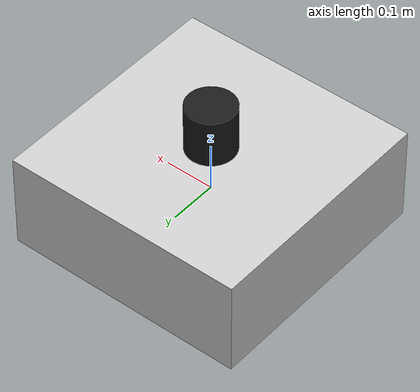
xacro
<?xml version="1.0"?>
<robot xmlns:xacro="http://www.ros.org/wiki/xacro" name="velodyne_on_box">

  <!-- Box Link -->
  <link name="box_link">
    <visual>
      <geometry>
        <box size="0.5 0.5 0.2"/>
      </geometry>
      <material>
        <color rgba="0.8 0.8 0.8 1.0"/>
      </material>
    </visual>
    <collision>
      <geometry>
        <box size="0.5 0.5 0.2"/>
      </geometry>
    </collision>
    <inertial>
      <mass value="1.0"/>
      <inertia ixx="0.01" ixy="0.0" ixz="0.0" iyy="0.01" iyz="0.0" izz="0.01"/>
    </inertial>
  </link>

  <!-- Laser Link -->
  <link name="laser_link">
    <visual>
      <geometry>
        <cylinder length="0.1" radius="0.05"/>
      </geometry>
      <material>
        <color rgba="0.1 0.1 0.1 1.0"/>
      </material>
    </visual>
    <collision>
      <geometry>
        <cylinder length="0.1" radius="0.05"/>
      </geometry>
    </collision>
    <inertial>
      <mass value="0.5"/>
      <inertia ixx="0.002" ixy="0.0" ixz="0.0" iyy="0.002" iyz="0.0" izz="0.002"/>
    </inertial>
  </link>

  <!-- Joint between Box and Laser -->
  <joint name="box_to_laser" type="fixed">
    <parent link="box_link"/>
    <child link="laser_link"/>
    <origin xyz="0 0 0.15" rpy="0 0 0"/>
  </joint>

  <!-- Gazebo Plugin for Velodyne -->
  <gazebo reference="laser_link">
    <sensor type="gpu_ray" name="velodyne-VLP16">
      <pose>0 0 0.1 0 0 0</pose>
      <visualize>true</visualize>
      <update_rate>10</update_rate>
      <ray>
        <scan>
          <horizontal>
            <samples>440</samples>
            <resolution>1</resolution>
            <min_angle>-3.14159265</min_angle>
            <max_angle>3.14159265</max_angle>
          </horizontal>
          <vertical>
            <samples>16</samples>
            <resolution>1</resolution>
            <min_angle>-0.261799388</min_angle>
            <max_angle>0.261799388</max_angle>
          </vertical>
        </scan>
        <range>
          <min>0.3</min>
          <max>131</max>
          <resolution>0.001</resolution>
        </range>
        <noise>
          <type>gaussian</type>
          <mean>0.0</mean>
          <stddev>0.0</stddev>
        </noise>
      </ray>
      <plugin name="gazebo_ros_laser_controller" filename="libgazebo_ros_velodyne_laser.so">
        <ros>
          <remapping>~/out:=/velodyne_points</remapping>
        </ros>
        <frame_name>laser_link</frame_name>
        <organize_cloud>false</organize_cloud>
        <min_range>0.9</min_range>
        <max_range>130.0</max_range>
        <gaussian_noise>0.008</gaussian_noise>
        <output_type>sensor_msgs/msg/PointCloud2</output_type>
      </plugin>
    </sensor>
  </gazebo>

</robot>
